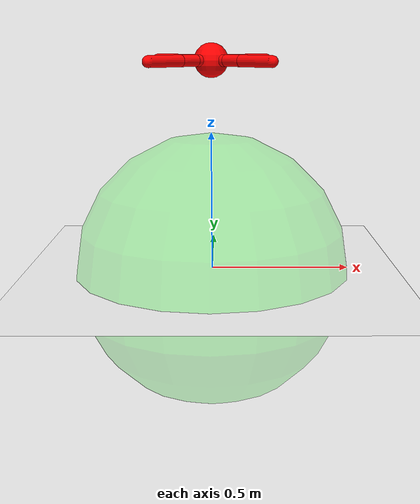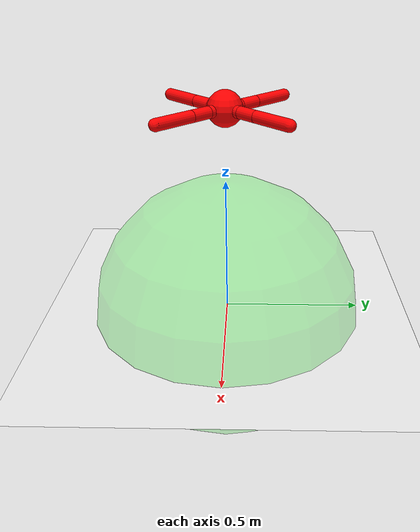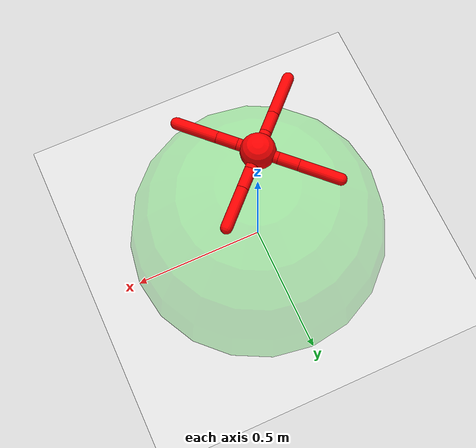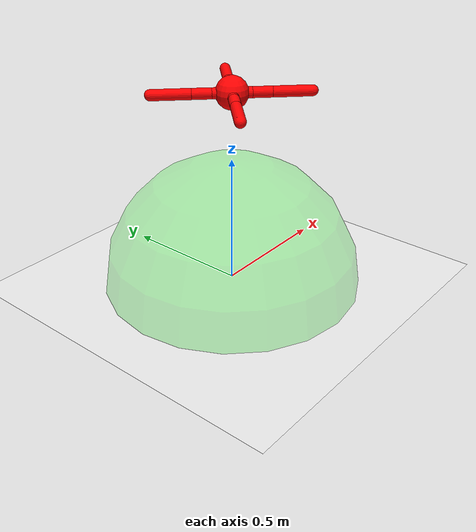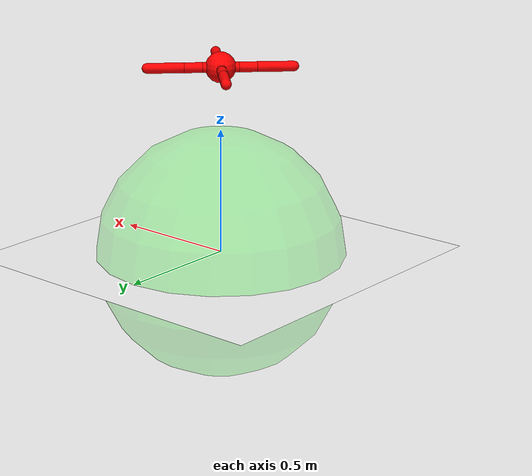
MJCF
<?xml version="1.0" encoding="utf-8"?>
<mujoco model="ant_tiny">
	<option timestep="0.02"></option>
	<size njmax="3000" nconmax="1000"></size>
	<default>
		<joint armature="1" damping="1" limited="true"></joint>
		<geom condim="3" density="5.0" friction="0.75 0.01 0.01" margin="0.01" rgba="1 0 0 1"></geom>
		<motor ctrllimited="true" ctrlrange="-1.0 1.0" gear="50"></motor>
		<site size="0.2" type="sphere" rgba="0 0 1 0"></site>
	</default>
	<worldbody>
		<geom name="floor" size="3.5 3.5 0.1" type="plane" condim="3" rgba="1 1 1 1" material="MatPlane"></geom>
		<body name="robot" pos="0.0 0.0 0.75" quat="1.0 0.0 0.0 0.0">
			<site name="robot" rgba="1 0 0 .01"></site>
			<camera name="vision" pos=".125 0 .2" xyaxes="0 -1 0 .4 0 1" fovy="100"></camera>
			<camera name="track" mode="track" pos="0.0 -2.0 2" xyaxes="1.0 -0.0 0 0.0 1.0 1"></camera>
			<geom name="robot" pos="0 0 0" size="0.06" type="sphere"></geom>
			<joint armature="0" damping="0" limited="false" margin="0.01" name="robot" pos="0 0 0" type="free"></joint>
			<body name="front_left_leg" pos="0 0 0">
				<geom fromto="0.0 0.0 0.0 0.05 0.05 0.0" name="aux_1_geom" size="0.02" type="capsule"></geom>
				<body name="aux_1" pos="0.05 0.05 0">
					<joint axis="0 0 1" name="hip_1" pos="0.0 0.0 0.0" range="-30 30" type="hinge"></joint>
					<geom fromto="0.0 0.0 0.0 0.05 0.05 0.0" name="front_left_leg_geom" size="0.02" type="capsule"></geom>
					<body pos="0.05 0.05 0">
						<joint axis="-1 1 0" name="ankle_1" pos="0.0 0.0 0.0" range="30 70" type="hinge"></joint>
						<geom fromto="0.0 0.0 0.0 0.1 0.1 0.0" name="front_left_ankle_geom" size="0.02" type="capsule"></geom>
						<site name="ankle_1a" pos="0 0 0"></site>
						<site name="ankle_1b" pos="0.1 0.1 0.0"></site>
					</body>
				</body>
			</body>
			<body name="front_right_leg" pos="0 0 0">
				<geom fromto="0.0 0.0 0.0 -0.05 0.05 0.0" name="aux_2_geom" size="0.02" type="capsule"></geom>
				<body name="aux_2" pos="-0.05 0.05 0">
					<joint axis="0 0 1" name="hip_2" pos="0.0 0.0 0.0" range="-30 30" type="hinge"></joint>
					<geom fromto="0.0 0.0 0.0 -0.05 0.05 0.0" name="front_right_leg_geom" size="0.02" type="capsule"></geom>
					<body pos="-0.05 0.05 0">
						<joint axis="1 1 0" name="ankle_2" pos="0.0 0.0 0.0" range="-70 -30" type="hinge"></joint>
						<geom fromto="0.0 0.0 0.0 -0.1 0.1 0.0" name="front_right_ankle_geom" size="0.02" type="capsule"></geom>
						<site name="ankle_2a" pos="0 0 0"></site>
						<site name="ankle_2b" pos="-0.1 0.1 0.0"></site>
					</body>
				</body>
			</body>
			<body name="back_left_leg" pos="0 0 0">
				<geom fromto="0.0 0.0 0.0 -0.05 -0.05 0.0" name="aux_3_geom" size="0.02" type="capsule"></geom>
				<body name="aux_3" pos="-0.05 -0.05 0">
					<joint axis="0 0 1" name="hip_3" pos="0.0 0.0 0.0" range="-30 30" type="hinge"></joint>
					<geom fromto="0.0 0.0 0.0 -0.05 -0.05 0.0" name="back_left_leg_geom" size="0.02" type="capsule"></geom>
					<body pos="-0.05 -0.05 0">
						<joint axis="-1 1 0" name="ankle_3" pos="0.0 0.0 0.0" range="-70 -30" type="hinge"></joint>
						<geom fromto="0.0 0.0 0.0 -0.1 -0.1 0.0" name="back_left_ankle_geom" size="0.02" type="capsule"></geom>
						<site name="ankle_3a" pos="0 0 0"></site>
						<site name="ankle_3b" pos="-0.1 -0.1 0.0"></site>
					</body>
				</body>
			</body>
			<body name="back_right_leg" pos="0 0 0">
				<geom fromto="0.0 0.0 0.0 0.05 -0.05 0.0" name="aux_4_geom" size="0.02" type="capsule"></geom>
				<body name="aux_4" pos="0.05 -0.05 0">
					<joint axis="0 0 1" name="hip_4" pos="0.0 0.0 0.0" range="-30 30" type="hinge"></joint>
					<geom fromto="0.0 0.0 0.0 0.05 -0.05 0.0" name="back_right_leg_geom" size="0.02" type="capsule"></geom>
					<body pos="0.05 -0.05 0">
						<joint axis="1 1 0" name="ankle_4" pos="0.0 0.0 0.0" range="30 70" type="hinge"></joint>
						<geom fromto="0.0 0.0 0.0 0.1 -0.1 0.0" name="back_right_ankle_geom" size="0.02" type="capsule"></geom>
						<site name="ankle_4a" pos="0 0 0"></site>
						<site name="ankle_4b" pos="0.1 -0.1 0.0"></site>
					</body>
				</body>
			</body>
		</body>
		<body name="goal" pos="0.0 0.0 0.0" quat="1.0 0.0 0.0 0.0">
			<joint type="slide" axis="1 0 0" name="goal_x" damping="0" limited="false"></joint>
			<joint type="slide" axis="0 1 0" name="goal_y" damping="0" limited="false"></joint>
			<geom name="goal" type="sphere" size="0.5" rgba="0.0 1.0 0.0 0.25" group="0" contype="0" conaffinity="0"></geom>
		</body>
		<body name="hazard0" pos="0.0 0.0 0.02" quat="1.0 0.0 0.0 0.0">
			<joint type="slide" axis="1 0 0" name="hazard0_x" damping="0" limited="false"></joint>
			<joint type="slide" axis="0 1 0" name="hazard0_y" damping="0" limited="false"></joint>
			<geom name="hazard0" type="cylinder" size="0.3 0.01" rgba="0.0 0.0 1.0 0.25" group="3" contype="0" conaffinity="0"></geom>
		</body>
		<body name="hazard1" pos="0.0 0.0 0.02" quat="1.0 0.0 0.0 0.0">
			<joint type="slide" axis="1 0 0" name="hazard1_x" damping="0" limited="false"></joint>
			<joint type="slide" axis="0 1 0" name="hazard1_y" damping="0" limited="false"></joint>
			<geom name="hazard1" type="cylinder" size="0.3 0.01" rgba="0.0 0.0 1.0 0.25" group="3" contype="0" conaffinity="0"></geom>
		</body>
		<body name="hazard2" pos="0.0 0.0 0.02" quat="1.0 0.0 0.0 0.0">
			<joint type="slide" axis="1 0 0" name="hazard2_x" damping="0" limited="false"></joint>
			<joint type="slide" axis="0 1 0" name="hazard2_y" damping="0" limited="false"></joint>
			<geom name="hazard2" type="cylinder" size="0.3 0.01" rgba="0.0 0.0 1.0 0.25" group="3" contype="0" conaffinity="0"></geom>
		</body>
		<body name="hazard3" pos="0.0 0.0 0.02" quat="1.0 0.0 0.0 0.0">
			<joint type="slide" axis="1 0 0" name="hazard3_x" damping="0" limited="false"></joint>
			<joint type="slide" axis="0 1 0" name="hazard3_y" damping="0" limited="false"></joint>
			<geom name="hazard3" type="cylinder" size="0.3 0.01" rgba="0.0 0.0 1.0 0.25" group="3" contype="0" conaffinity="0"></geom>
		</body>
		<body name="hazard4" pos="0.0 0.0 0.02" quat="1.0 0.0 0.0 0.0">
			<joint type="slide" axis="1 0 0" name="hazard4_x" damping="0" limited="false"></joint>
			<joint type="slide" axis="0 1 0" name="hazard4_y" damping="0" limited="false"></joint>
			<geom name="hazard4" type="cylinder" size="0.3 0.01" rgba="0.0 0.0 1.0 0.25" group="3" contype="0" conaffinity="0"></geom>
		</body>
		<body name="hazard5" pos="0.0 0.0 0.02" quat="1.0 0.0 0.0 0.0">
			<joint type="slide" axis="1 0 0" name="hazard5_x" damping="0" limited="false"></joint>
			<joint type="slide" axis="0 1 0" name="hazard5_y" damping="0" limited="false"></joint>
			<geom name="hazard5" type="cylinder" size="0.3 0.01" rgba="0.0 0.0 1.0 0.25" group="3" contype="0" conaffinity="0"></geom>
		</body>
		<light cutoff="100" diffuse="1 1 1" dir="0 0 -1" directional="true" exponent="1" pos="0 0 0.5" specular="0 0 0" castshadow="false"></light>
		<camera name="fixednear" pos="0 -2 2" zaxis="0 -1 1"></camera>
		<camera name="fixedfar" pos="0 -5 5" zaxis="0 -1 1"></camera>
	</worldbody>
	<sensor>
		<touch site="ankle_1a" name="touch_ankle_1a"></touch>
		<touch site="ankle_2a" name="touch_ankle_2a"></touch>
		<touch site="ankle_3a" name="touch_ankle_3a"></touch>
		<touch site="ankle_4a" name="touch_ankle_4a"></touch>
		<touch site="ankle_1b" name="touch_ankle_1b"></touch>
		<touch site="ankle_2b" name="touch_ankle_2b"></touch>
		<touch site="ankle_3b" name="touch_ankle_3b"></touch>
		<touch site="ankle_4b" name="touch_ankle_4b"></touch>
		<jointpos joint="hip_1" name="jointpos_hip_1"></jointpos>
		<jointpos joint="hip_2" name="jointpos_hip_2"></jointpos>
		<jointpos joint="hip_3" name="jointpos_hip_3"></jointpos>
		<jointpos joint="hip_4" name="jointpos_hip_4"></jointpos>
		<jointpos joint="ankle_1" name="jointpos_ankle_1"></jointpos>
		<jointpos joint="ankle_2" name="jointpos_ankle_2"></jointpos>
		<jointpos joint="ankle_3" name="jointpos_ankle_3"></jointpos>
		<jointpos joint="ankle_4" name="jointpos_ankle_4"></jointpos>
		<jointvel joint="hip_1" name="jointvel_hip_1"></jointvel>
		<jointvel joint="hip_2" name="jointvel_hip_2"></jointvel>
		<jointvel joint="hip_3" name="jointvel_hip_3"></jointvel>
		<jointvel joint="hip_4" name="jointvel_hip_4"></jointvel>
		<jointvel joint="ankle_1" name="jointvel_ankle_1"></jointvel>
		<jointvel joint="ankle_2" name="jointvel_ankle_2"></jointvel>
		<jointvel joint="ankle_3" name="jointvel_ankle_3"></jointvel>
		<jointvel joint="ankle_4" name="jointvel_ankle_4"></jointvel>
		<accelerometer site="robot" name="accelerometer"></accelerometer>
		<velocimeter site="robot" name="velocimeter"></velocimeter>
		<gyro site="robot" name="gyro"></gyro>
		<magnetometer site="robot" name="magnetometer"></magnetometer>
		<subtreecom body="robot" name="subtreecom"></subtreecom>
		<subtreelinvel body="robot" name="subtreelinvel"></subtreelinvel>
		<subtreeangmom body="robot" name="subtreeangmom"></subtreeangmom>
	</sensor>
	<actuator>
		<motor name="hip_1" joint="hip_1"></motor>
		<motor name="ankle_1" joint="ankle_1"></motor>
		<motor name="hip_2" joint="hip_2"></motor>
		<motor name="ankle_2" joint="ankle_2"></motor>
		<motor name="hip_3" joint="hip_3"></motor>
		<motor name="ankle_3" joint="ankle_3"></motor>
		<motor name="hip_4" joint="hip_4"></motor>
		<motor name="ankle_4" joint="ankle_4"></motor>
	</actuator>
	<equality>
	</equality>
	<asset>
		<texture type="skybox" builtin="gradient" rgb1="0.527 0.582 0.906" rgb2="0.1 0.1 0.35" width="800" height="800" markrgb="1 1 1" mark="random" random="0.001"></texture>
		<texture name="texplane" builtin="checker" height="100" width="100" rgb1="0.7 0.7 0.7" rgb2="0.8 0.8 0.8" type="2d"></texture>
		<material name="MatPlane" reflectance="0.1" shininess="0.1" specular="0.1" texrepeat="10 10" texture="texplane"></material>
	</asset>
</mujoco>
